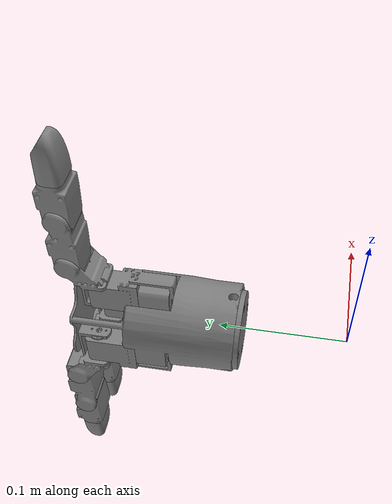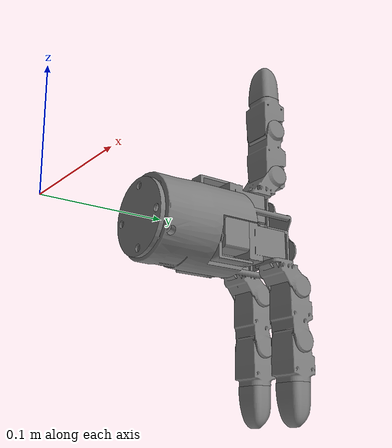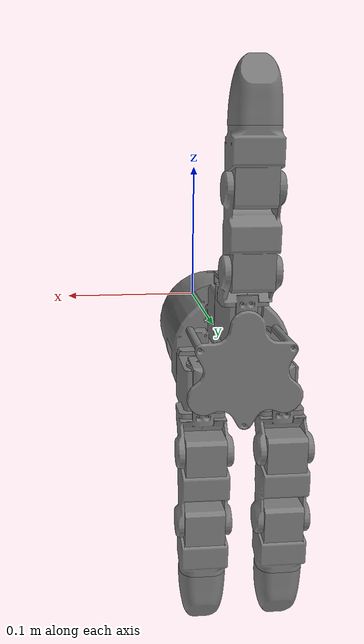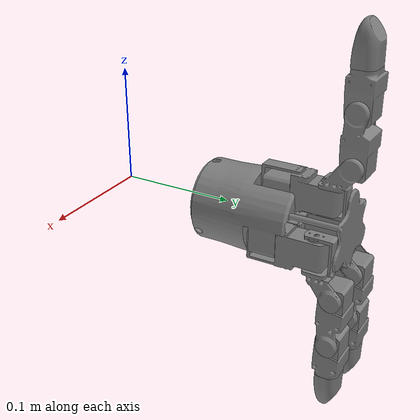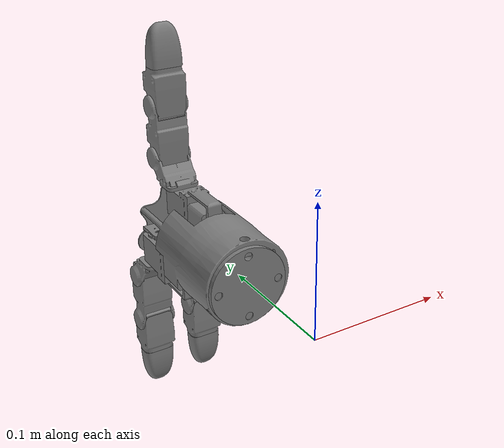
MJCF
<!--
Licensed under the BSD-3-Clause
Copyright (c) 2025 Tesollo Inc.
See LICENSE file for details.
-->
<mujoco model="dg3f">
    <compiler angle="radian" meshdir="assets" texturedir="texture" autolimits="true"/>
    <asset>
        <!--Robot Gripper-->
        <mesh file="mount/mount.STL"/>
        <mesh file="dg3f/base_link.STL"/>
        <mesh file="dg3f/l_1_1.STL"/>
        <mesh file="dg3f/l_1_2.STL"/>
        <mesh file="dg3f/l_1_3.STL"/>
        <mesh file="dg3f/l_1_4.STL"/>
        <mesh file="dg3f/l_1_tip.STL"/>
        <mesh file="dg3f/l_2_1.STL"/>
        <mesh file="dg3f/l_2_2.STL"/>
        <mesh file="dg3f/l_2_3.STL"/>
        <mesh file="dg3f/l_2_4.STL"/>
        <mesh file="dg3f/l_2_tip.STL"/>
    </asset>

    <default class="main">
        <default class="robot">
            <joint type="hinge" axis="0 0 1" springdamper="1e-2 50.0" armature="1e-3"/>
            <geom density="800"/>

            <default class="visual">
                <geom type="mesh" group="1" contype="0" conaffinity="0"/>

                <!--Robot Gripper-->
                <default class="visual_mount">
                    <geom mesh="mount" />
                </default>

                <default class="visual_base_dg">
                    <geom mesh="base_link" />
                </default>
                <default class="visual_l_1_1">
                    <geom mesh="l_1_1" />
                </default>
                <default class="visual_l_1_2">
                    <geom mesh="l_1_2" />
                </default>
                <default class="visual_l_1_3">
                    <geom mesh="l_1_3" />
                </default>
                <default class="visual_l_1_4">
                    <geom mesh="l_1_4" />
                </default>
                <default class="visual_l_1_tip">
                    <geom mesh="l_1_tip" />
                </default>

                <default class="visual_l_2_1">
                    <geom mesh="l_2_1" />
                </default>
                <default class="visual_l_2_2">
                    <geom mesh="l_2_2" />
                </default>
                <default class="visual_l_2_3">
                    <geom mesh="l_2_3" />
                </default>
                <default class="visual_l_2_4">
                    <geom mesh="l_2_4" />
                </default>
                <default class="visual_l_2_tip">
                    <geom mesh="l_2_tip" />
                </default>
            </default>
        </default>
    </default>

    <worldbody>
        <!--Camera parameters-->
        <camera name="main" mode="fixed" target="base_link_dg" pos="2 2 2.7" axisangle="2 2 -2 1"/>
        <camera name="top_down" mode="fixed" target="base_link_dg" pos="0 -0.6 2.0" axisangle="2 2 2 0"/>
        <camera name="side" mode="fixed" target="base_link_dg" pos="0.8 -0.6 1.0" quat="0.5 0.5 0.5 0.5"/>

        <body name="l_mount" pos="0.0 0.0823 0.0" quat="0.7071068 0.0 0.0 -0.7071068">
            <geom class="visual_mount"/>
            <!--Gripper parameters-->
            <body name="base_link_dg" pos="-0.003 0.0 0.0" quat="0.7071068 0.0 -0.7071068 0.0" childclass="robot">
                <body name="ref_link" pos="0.0 0.0 0.220" quat="0 1 0 0"/>
                <geom class="visual_base_dg" />
                <body name="l_1_1" pos="0.0265 0.0 0.06435" >
                    <geom class="visual_l_1_1"/>
                    <joint name="j_1_1" pos="0.0 0.0 0.0" axis="0 0 1" limited="true" range="-6.28 6.28" damping="1.1" frictionloss="1.1"/>
                    <inertial mass="0.046" pos="3.906e-4 3.121e-8 -0.014" fullinertia="1.675e-5 1.924e-5 6.292e-6 2.001e-11 1.928e-6 2.206e-11"/>
                    <body name="l_1_2" pos="-0.00115 0.0 0.04235" >
                        <geom class="visual_l_1_2"/>
                        <joint name="j_1_2" pos="0.0 0.0 0.0" axis="1 0 0" limited="true" range="-6.28 6.28" damping="1.1" frictionloss="1.1"/>
                        <inertial mass="0.027" pos="0.01 3.444e-6 0.016" fullinertia="6.787e-6 6.313e-6 3.652e-6 -4.808e-9 -1.152e-6 -7.457e-9"/>
                        <body name="l_1_3" pos="0.03258 0.0 0.02022">
                            <geom class="visual_l_1_3"/>
                            <joint name="j_1_3" pos="0.0 0.0 0.0" axis="0 -1 0" limited="true" range="-6.28 6.28" damping="1.1" frictionloss="1.1"/>
                            <inertial mass="0.045" pos="0.014 -4.527e-4 -3.953e-5" fullinertia="6.508e-6 1.691e-5 1.494e-5 1.513e-7 -4.796e-8 2.389e-9"/>
                            <body name="l_1_4" pos="0.0434 0.0 0.0" >
                                <geom class="visual_l_1_4"/>
                                <joint name="j_1_4" pos="0.0 0.0 0.0" axis="0 -1 0" limited="true" range="-6.28 6.28" damping="1.1" frictionloss="1.1"/>
                                <inertial mass="0.041" pos="0.012 -2.269e-4 -4.676e-5" fullinertia="5.331e-6 1.086e-5 9.902e-6 -6.732e-8 -1.806e-8 6.130e-10"/>
                                <body name="l_1_tip" pos="0.0315 0.0 0.0" >
                                    <inertial mass="0.015" pos="0.045 -4.360e-4 -7.220e-8" fullinertia="9.617e-7 1.595e-6 1.300e-6 3.158e-8 2.069e-12 1.087e-11"/>
                                    <geom class="visual_l_1_tip"/>
                                </body>
                            </body>
                        </body>
                    </body>
                </body>
                <body name="l_2_1" pos="-0.01334 0.023 0.06435">
                    <geom class="visual_l_2_1"/>
                    <joint name="j_2_1" pos="0.0 0.0 0.0" axis="0 0 1" limited="true" range="-6.28 6.28" damping="1.1" frictionloss="1.1"/>
                    <inertial mass="0.046" pos="3.906e-4 3.121e-8 -0.014" fullinertia="1.675e-5 1.924e-5 6.292e-6 2.001e-11 1.928e-6 2.206e-11"/>
                    <body name="l_2_2" pos="0.00115 0.0 0.04235" >
                        <geom class="visual_l_2_2"/>
                        <joint name="j_2_2" pos="0.0 0.0 0.0" axis="-1 0 0" limited="true" range="-6.28 6.28" damping="1.1" frictionloss="1.1"/>
                        <inertial mass="0.027" pos="0.01 3.444e-6 0.016" fullinertia="6.787e-6 6.313e-6 3.652e-6 -4.808e-9 -1.152e-6 -7.457e-9"/>
                        <body name="l_2_3" pos="-0.03258 0.0 0.02022" >
                            <geom class="visual_l_2_3"/>
                            <joint name="j_2_3" pos="0.0 0.0 0.0" axis="0 1 0" limited="true" range="-6.28 6.28" damping="1.1" frictionloss="1.1"/>
                            <inertial mass="0.045" pos="0.014 -4.527e-4 -3.953e-5" fullinertia="6.508e-6 1.691e-5 1.494e-5 1.513e-7 -4.796e-8 2.389e-9"/>
                            <body name="l_2_4" pos="-0.0434 0.0 0.0" >
                                <geom class="visual_l_2_4"/>
                                <joint name="j_2_4" pos="0.0 0.0 0.0" axis="0 1 0" limited="true" range="-6.28 6.28" damping="1.1" frictionloss="1.1"/>
                                <inertial mass="0.041" pos="0.012 -2.269e-4 -4.676e-5" fullinertia="5.331e-6 1.086e-5 9.902e-6 -6.732e-8 -1.806e-8 6.130e-10"/>
                                <body name="l_2_tip" pos="-0.0315 0.0 0.0" >
                                    <geom class="visual_l_2_tip"/>
                                    <inertial mass="0.015" pos="0.045 -4.360e-4 -7.220e-8" fullinertia="9.617e-7 1.595e-6 1.300e-6 3.158e-8 2.069e-12 1.087e-11"/>
                                </body>
                            </body>
                        </body>
                    </body>
                </body>
                <body name="l_3_1" pos="-0.01334 -0.023 0.06435" >
                    <geom class="visual_l_2_1"/>
                    <joint name="j_3_1" pos="0.0 0.0 0.0" axis="0 0 1" limited="true" range="-6.28 6.28" damping="1.1" frictionloss="1.1"/>
                    <inertial mass="0.046" pos="3.906e-4 3.121e-8 -0.014" fullinertia="1.675e-5 1.924e-5 6.292e-6 2.001e-11 1.928e-6 2.206e-11"/>
                    <body name="l_3_2" pos="0.00115 0.0 0.04235" >
                        <geom class="visual_l_2_2"/>
                        <joint name="j_3_2" pos="0.0 0.0 0.0" axis="-1 0 0" limited="true" range="-6.28 6.28" damping="1.1" frictionloss="1.1"/>
                        <inertial mass="0.027" pos="0.01 3.444e-6 0.016" fullinertia="6.787e-6 6.313e-6 3.652e-6 -4.808e-9 -1.152e-6 -7.457e-9"/>
                        <body name="l_3_3" pos="-0.03258 0.0 0.02022" >
                            <geom class="visual_l_2_3"/>
                            <joint name="j_3_3" pos="0.0 0.0 0.0" axis="0 1 0" limited="true" range="-6.28 6.28" damping="1.1" frictionloss="1.1"/>
                            <inertial mass="0.045" pos="0.014 -4.527e-4 -3.953e-5" fullinertia="6.508e-6 1.691e-5 1.494e-5 1.513e-7 -4.796e-8 2.389e-9"/>
                            <body name="l_3_4" pos="-0.0434 0.0 0.0" >
                                <geom class="visual_l_2_4"/>
                                <joint name="j_3_4" pos="0.0 0.0 0.0" axis="0 1 0" limited="true" range="-6.28 6.28" damping="1.1" frictionloss="1.1"/>
                                <inertial mass="0.041" pos="0.012 -2.269e-4 -4.676e-5" fullinertia="5.331e-6 1.086e-5 9.902e-6 -6.732e-8 -1.806e-8 6.130e-10"/>
                                <body name="l_3_tip" pos="-0.0315 0.0 0.0" >
                                    <inertial mass="0.015" pos="0.045 -4.360e-4 -7.220e-8" fullinertia="9.617e-7 1.595e-6 1.300e-6 3.158e-8 2.069e-12 1.087e-11"/>
                                    <geom class="visual_l_2_tip"/>
                                </body>
                            </body>
                        </body>
                    </body>
                </body>
            </body>
        </body>
    </worldbody>

    <actuator>
        <position name="act_j_1_1" joint="j_1_1" kp="100" ctrlrange="-1.0472 1.0472"/>
        <position name="act_j_1_2" joint="j_1_2" kp="100" ctrlrange="-1.76278 1.76278"/>
        <position name="act_j_1_3" joint="j_1_3" kp="100" ctrlrange="-0.15708 2.53073"/>
        <position name="act_j_1_4" joint="j_1_4" kp="100" ctrlrange="-0.226893 2.02458"/>

        <position name="act_j_2_1" joint="j_2_1" kp="100" ctrlrange="-1.91986 0.139626"/>
        <position name="act_j_2_2" joint="j_2_2" kp="100" ctrlrange="-1.76278 1.76278"/>
        <position name="act_j_2_3" joint="j_2_3" kp="100" ctrlrange="-0.15708 2.53073"/>
        <position name="act_j_2_4" joint="j_2_4" kp="100" ctrlrange="-0.226893 2.02458"/>

        <position name="act_j_3_1" joint="j_3_1" kp="100" ctrlrange="-0.0872665 2.00713"/>
        <position name="act_j_3_2" joint="j_3_2" kp="100" ctrlrange="-1.76278 1.76278"/>
        <position name="act_j_3_3" joint="j_3_3" kp="100" ctrlrange="-0.15708 2.53073"/>
        <position name="act_j_3_4" joint="j_3_4" kp="100" ctrlrange="-0.226893 2.02458"/>
    </actuator>

</mujoco>
